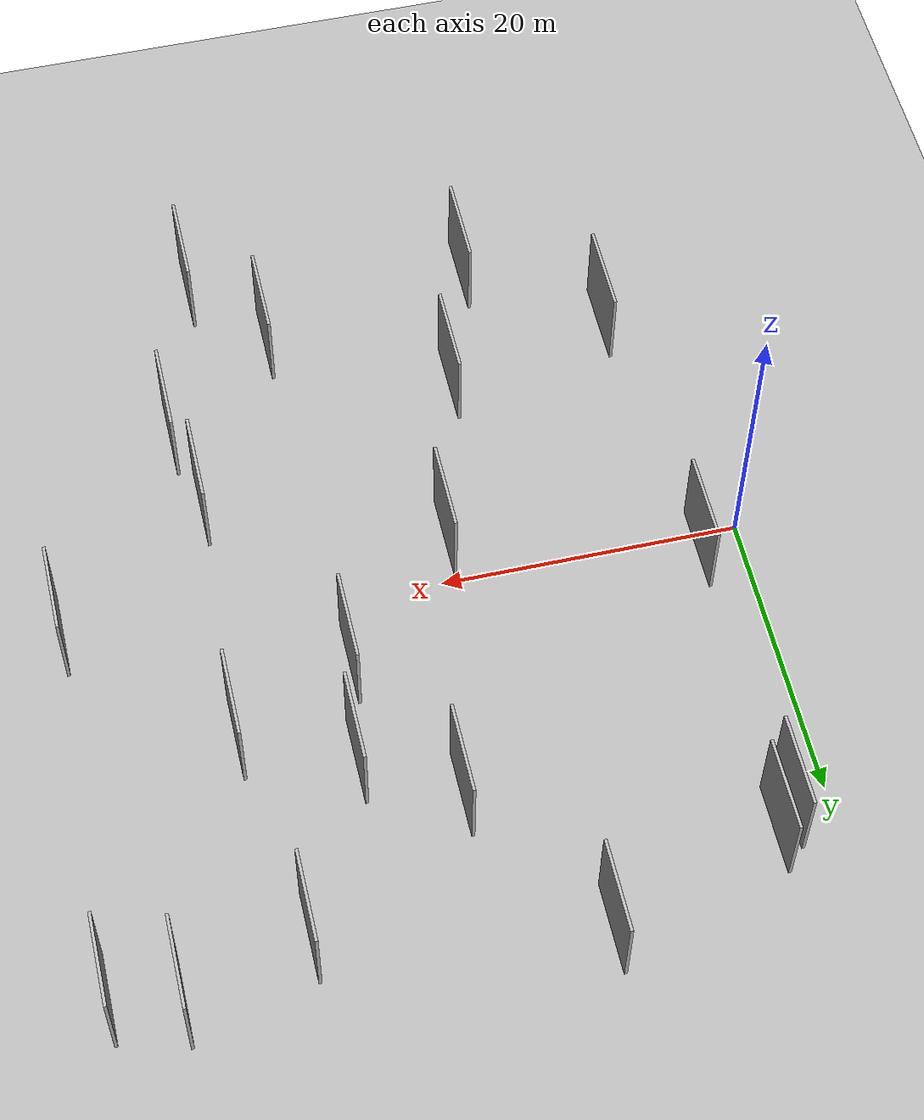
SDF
<?xml version="1.0" encoding="utf-8"?>

<sdf version="1.6">

   <world name="default">

      <gui fullscreen="0">

         <camera name="user_camera">

            <pose>-15 0 4.57585 0 0 0</pose>

            <view_controller>orbit</view_controller>

         </camera>

      </gui>

      <scene>

         <sky>

           <clouds>

             <speed>12</speed>

           </clouds>

         </sky>

         <ambient>0.4 0.4 0.4 1</ambient>

         <background>0.7 0.7 0.7 1</background>

         <shadows>1</shadows>

      </scene>

      <gravity>0 0 -9.8066</gravity>

      <magnetic_field>6e-06 2.3e-05 -4.2e-05</magnetic_field>

      <physics default="0" name="default_physics" type="ode">

         <ode>

            <solver>

               <type>quick</type>

               <iters>10</iters>

               <sor>1.0</sor>

               <use_dynamic_moi_rescaling>0</use_dynamic_moi_rescaling>

            </solver>

            <constraints>

               <cfm>0</cfm>

               <erp>0.2</erp>

               <contact_max_correcting_vel>100</contact_max_correcting_vel>

               <contact_surface_layer>0.001</contact_surface_layer>

            </constraints>

         </ode>

         <max_step_size>0.004</max_step_size>

         <real_time_factor>1</real_time_factor>

         <real_time_update_rate>250</real_time_update_rate>

      </physics>

      <light name="sun" type="directional">

         <cast_shadows>1</cast_shadows>

         <pose>0 0 10 0 0 0</pose>

         <diffuse>0.8 0.8 0.8 1</diffuse>

         <specular>0.2 0.2 0.2 1</specular>

         <attenuation>

            <range>1000</range>

            <constant>0.9</constant>

            <linear>0.01</linear>

            <quadratic>0.001</quadratic>

         </attenuation>

         <direction>-0.5 0.1 -0.9</direction>

      </light>

      <include>

         <name>ground_plane_1</name>

         <uri>model://HANNAS_ground_plane</uri>

         <pose>0 0 0  0 0 0</pose>

      </include>

      <include>

         <name>ground_plane_2</name>

         <uri>model://HANNAS_ground_plane</uri>

         <pose>100 0 0  0 0 0</pose>

      </include>

      <model name="HANNAS_wall_1">

         <static>1</static>

         <pose frame="">19.3405 -2.0208 2.5 0.000000 0.000000 1.570796</pose>

         <link name="link">

            <pose frame="">0 0 3.00 0 0 0</pose>

            <collision name="collision">

               <geometry>

                  <box>

                     <size>6.00 0.2 6.00</size>

                  </box>

               </geometry>

               <max_contacts>10</max_contacts>

               <surface>

                  <contact>

                     <ode/>

                  </contact>

                  <bounce/>

                  <friction>

                     <torsional>

                        <ode/>

                     </torsional>

                     <ode/>

                  </friction>

               </surface>

            </collision>

            <visual name="visual">

               <cast_shadows>0</cast_shadows>

               <geometry>

                  <box>

                     <size>6.00 0.2 6.00</size>

                  </box>

               </geometry>

               <material>

                  <script>

                     <uri>model://HANNAS_wall/materials/scripts</uri>

                     <uri>model://HANNAS_wall/materials/textures</uri>

                     <name>vrc/HANNAS_wall</name>

                  </script>

               </material>

            </visual>

            <self_collide>0</self_collide>

            <enable_wind>0</enable_wind>

            <kinematic>0</kinematic>

         </link>

      </model>

      <model name="HANNAS_wall_2">

         <static>1</static>

         <pose frame="">35.4959 -13.6867 2.5 0.000000 0.000000 1.570796</pose>

         <link name="link">

            <pose frame="">0 0 3.00 0 0 0</pose>

            <collision name="collision">

               <geometry>

                  <box>

                     <size>6.00 0.2 6.00</size>

                  </box>

               </geometry>

               <max_contacts>10</max_contacts>

               <surface>

                  <contact>

                     <ode/>

                  </contact>

                  <bounce/>

                  <friction>

                     <torsional>

                        <ode/>

                     </torsional>

                     <ode/>

                  </friction>

               </surface>

            </collision>

            <visual name="visual">

               <cast_shadows>0</cast_shadows>

               <geometry>

                  <box>

                     <size>6.00 0.2 6.00</size>

                  </box>

               </geometry>

               <material>

                  <script>

                     <uri>model://HANNAS_wall/materials/scripts</uri>

                     <uri>model://HANNAS_wall/materials/textures</uri>

                     <name>vrc/HANNAS_wall</name>

                  </script>

               </material>

            </visual>

            <self_collide>0</self_collide>

            <enable_wind>0</enable_wind>

            <kinematic>0</kinematic>

         </link>

      </model>

      <model name="HANNAS_wall_3">

         <static>1</static>

         <pose frame="">32.3080 -25.7244 2.5 0.000000 0.000000 1.570796</pose>

         <link name="link">

            <pose frame="">0 0 3.00 0 0 0</pose>

            <collision name="collision">

               <geometry>

                  <box>

                     <size>6.00 0.2 6.00</size>

                  </box>

               </geometry>

               <max_contacts>10</max_contacts>

               <surface>

                  <contact>

                     <ode/>

                  </contact>

                  <bounce/>

                  <friction>

                     <torsional>

                        <ode/>

                     </torsional>

                     <ode/>

                  </friction>

               </surface>

            </collision>

            <visual name="visual">

               <cast_shadows>0</cast_shadows>

               <geometry>

                  <box>

                     <size>6.00 0.2 6.00</size>

                  </box>

               </geometry>

               <material>

                  <script>

                     <uri>model://HANNAS_wall/materials/scripts</uri>

                     <uri>model://HANNAS_wall/materials/textures</uri>

                     <name>vrc/HANNAS_wall</name>

                  </script>

               </material>

            </visual>

            <self_collide>0</self_collide>

            <enable_wind>0</enable_wind>

            <kinematic>0</kinematic>

         </link>

      </model>

      <model name="HANNAS_wall_4">

         <static>1</static>

         <pose frame="">22.5257 16.6328 2.5 0.000000 0.000000 1.570796</pose>

         <link name="link">

            <pose frame="">0 0 3.00 0 0 0</pose>

            <collision name="collision">

               <geometry>

                  <box>

                     <size>6.00 0.2 6.00</size>

                  </box>

               </geometry>

               <max_contacts>10</max_contacts>

               <surface>

                  <contact>

                     <ode/>

                  </contact>

                  <bounce/>

                  <friction>

                     <torsional>

                        <ode/>

                     </torsional>

                     <ode/>

                  </friction>

               </surface>

            </collision>

            <visual name="visual">

               <cast_shadows>0</cast_shadows>

               <geometry>

                  <box>

                     <size>6.00 0.2 6.00</size>

                  </box>

               </geometry>

               <material>

                  <script>

                     <uri>model://HANNAS_wall/materials/scripts</uri>

                     <uri>model://HANNAS_wall/materials/textures</uri>

                     <name>vrc/HANNAS_wall</name>

                  </script>

               </material>

            </visual>

            <self_collide>0</self_collide>

            <enable_wind>0</enable_wind>

            <kinematic>0</kinematic>

         </link>

      </model>

      <model name="HANNAS_wall_5">

         <static>1</static>

         <pose frame="">27.3279 6.0161 2.5 0.000000 0.000000 1.570796</pose>

         <link name="link">

            <pose frame="">0 0 3.00 0 0 0</pose>

            <collision name="collision">

               <geometry>

                  <box>

                     <size>6.00 0.2 6.00</size>

                  </box>

               </geometry>

               <max_contacts>10</max_contacts>

               <surface>

                  <contact>

                     <ode/>

                  </contact>

                  <bounce/>

                  <friction>

                     <torsional>

                        <ode/>

                     </torsional>

                     <ode/>

                  </friction>

               </surface>

            </collision>

            <visual name="visual">

               <cast_shadows>0</cast_shadows>

               <geometry>

                  <box>

                     <size>6.00 0.2 6.00</size>

                  </box>

               </geometry>

               <material>

                  <script>

                     <uri>model://HANNAS_wall/materials/scripts</uri>

                     <uri>model://HANNAS_wall/materials/textures</uri>

                     <name>vrc/HANNAS_wall</name>

                  </script>

               </material>

            </visual>

            <self_collide>0</self_collide>

            <enable_wind>0</enable_wind>

            <kinematic>0</kinematic>

         </link>

      </model>

      <model name="HANNAS_wall_6">

         <static>1</static>

         <pose frame="">35.3297 9.7608 2.5 0.000000 0.000000 1.570796</pose>

         <link name="link">

            <pose frame="">0 0 3.00 0 0 0</pose>

            <collision name="collision">

               <geometry>

                  <box>

                     <size>6.00 0.2 6.00</size>

                  </box>

               </geometry>

               <max_contacts>10</max_contacts>

               <surface>

                  <contact>

                     <ode/>

                  </contact>

                  <bounce/>

                  <friction>

                     <torsional>

                        <ode/>

                     </torsional>

                     <ode/>

                  </friction>

               </surface>

            </collision>

            <visual name="visual">

               <cast_shadows>0</cast_shadows>

               <geometry>

                  <box>

                     <size>6.00 0.2 6.00</size>

                  </box>

               </geometry>

               <material>

                  <script>

                     <uri>model://HANNAS_wall/materials/scripts</uri>

                     <uri>model://HANNAS_wall/materials/textures</uri>

                     <name>vrc/HANNAS_wall</name>

                  </script>

               </material>

            </visual>

            <self_collide>0</self_collide>

            <enable_wind>0</enable_wind>

            <kinematic>0</kinematic>

         </link>

      </model>

      <model name="HANNAS_wall_7">

         <static>1</static>

         <pose frame="">34.4608 -7.7306 2.5 0.000000 0.000000 1.570796</pose>

         <link name="link">

            <pose frame="">0 0 3.00 0 0 0</pose>

            <collision name="collision">

               <geometry>

                  <box>

                     <size>6.00 0.2 6.00</size>

                  </box>

               </geometry>

               <max_contacts>10</max_contacts>

               <surface>

                  <contact>

                     <ode/>

                  </contact>

                  <bounce/>

                  <friction>

                     <torsional>

                        <ode/>

                     </torsional>

                     <ode/>

                  </friction>

               </surface>

            </collision>

            <visual name="visual">

               <cast_shadows>0</cast_shadows>

               <geometry>

                  <box>

                     <size>6.00 0.2 6.00</size>

                  </box>

               </geometry>

               <material>

                  <script>

                     <uri>model://HANNAS_wall/materials/scripts</uri>

                     <uri>model://HANNAS_wall/materials/textures</uri>

                     <name>vrc/HANNAS_wall</name>

                  </script>

               </material>

            </visual>

            <self_collide>0</self_collide>

            <enable_wind>0</enable_wind>

            <kinematic>0</kinematic>

         </link>

      </model>

      <model name="HANNAS_wall_8">

         <static>1</static>

         <pose frame="">41.4975 26.4178 2.5 0.000000 0.000000 1.570796</pose>

         <link name="link">

            <pose frame="">0 0 3.00 0 0 0</pose>

            <collision name="collision">

               <geometry>

                  <box>

                     <size>6.00 0.2 6.00</size>

                  </box>

               </geometry>

               <max_contacts>10</max_contacts>

               <surface>

                  <contact>

                     <ode/>

                  </contact>

                  <bounce/>

                  <friction>

                     <torsional>

                        <ode/>

                     </torsional>

                     <ode/>

                  </friction>

               </surface>

            </collision>

            <visual name="visual">

               <cast_shadows>0</cast_shadows>

               <geometry>

                  <box>

                     <size>6.00 0.2 6.00</size>

                  </box>

               </geometry>

               <material>

                  <script>

                     <uri>model://HANNAS_wall/materials/scripts</uri>

                     <uri>model://HANNAS_wall/materials/textures</uri>

                     <name>vrc/HANNAS_wall</name>

                  </script>

               </material>

            </visual>

            <self_collide>0</self_collide>

            <enable_wind>0</enable_wind>

            <kinematic>0</kinematic>

         </link>

      </model>

      <model name="HANNAS_wall_9">

         <static>1</static>

         <pose frame="">3.4852 2.5388 2.5 0.000000 0.000000 1.570796</pose>

         <link name="link">

            <pose frame="">0 0 3.00 0 0 0</pose>

            <collision name="collision">

               <geometry>

                  <box>

                     <size>6.00 0.2 6.00</size>

                  </box>

               </geometry>

               <max_contacts>10</max_contacts>

               <surface>

                  <contact>

                     <ode/>

                  </contact>

                  <bounce/>

                  <friction>

                     <torsional>

                        <ode/>

                     </torsional>

                     <ode/>

                  </friction>

               </surface>

            </collision>

            <visual name="visual">

               <cast_shadows>0</cast_shadows>

               <geometry>

                  <box>

                     <size>6.00 0.2 6.00</size>

                  </box>

               </geometry>

               <material>

                  <script>

                     <uri>model://HANNAS_wall/materials/scripts</uri>

                     <uri>model://HANNAS_wall/materials/textures</uri>

                     <name>vrc/HANNAS_wall</name>

                  </script>

               </material>

            </visual>

            <self_collide>0</self_collide>

            <enable_wind>0</enable_wind>

            <kinematic>0</kinematic>

         </link>

      </model>

      <model name="HANNAS_wall_10">

         <static>1</static>

         <pose frame="">33.4839 24.0221 2.5 0.000000 0.000000 1.570796</pose>

         <link name="link">

            <pose frame="">0 0 3.00 0 0 0</pose>

            <collision name="collision">

               <geometry>

                  <box>

                     <size>6.00 0.2 6.00</size>

                  </box>

               </geometry>

               <max_contacts>10</max_contacts>

               <surface>

                  <contact>

                     <ode/>

                  </contact>

                  <bounce/>

                  <friction>

                     <torsional>

                        <ode/>

                     </torsional>

                     <ode/>

                  </friction>

               </surface>

            </collision>

            <visual name="visual">

               <cast_shadows>0</cast_shadows>

               <geometry>

                  <box>

                     <size>6.00 0.2 6.00</size>

                  </box>

               </geometry>

               <material>

                  <script>

                     <uri>model://HANNAS_wall/materials/scripts</uri>

                     <uri>model://HANNAS_wall/materials/textures</uri>

                     <name>vrc/HANNAS_wall</name>

                  </script>

               </material>

            </visual>

            <self_collide>0</self_collide>

            <enable_wind>0</enable_wind>

            <kinematic>0</kinematic>

         </link>

      </model>

      <model name="HANNAS_wall_11">

         <static>1</static>

         <pose frame="">4.4653 23.2430 2.5 0.000000 0.000000 1.570796</pose>

         <link name="link">

            <pose frame="">0 0 3.00 0 0 0</pose>

            <collision name="collision">

               <geometry>

                  <box>

                     <size>6.00 0.2 6.00</size>

                  </box>

               </geometry>

               <max_contacts>10</max_contacts>

               <surface>

                  <contact>

                     <ode/>

                  </contact>

                  <bounce/>

                  <friction>

                     <torsional>

                        <ode/>

                     </torsional>

                     <ode/>

                  </friction>

               </surface>

            </collision>

            <visual name="visual">

               <cast_shadows>0</cast_shadows>

               <geometry>

                  <box>

                     <size>6.00 0.2 6.00</size>

                  </box>

               </geometry>

               <material>

                  <script>

                     <uri>model://HANNAS_wall/materials/scripts</uri>

                     <uri>model://HANNAS_wall/materials/textures</uri>

                     <name>vrc/HANNAS_wall</name>

                  </script>

               </material>

            </visual>

            <self_collide>0</self_collide>

            <enable_wind>0</enable_wind>

            <kinematic>0</kinematic>

         </link>

      </model>

      <model name="HANNAS_wall_12">

         <static>1</static>

         <pose frame="">27.8571 -20.1355 2.5 0.000000 0.000000 1.570796</pose>

         <link name="link">

            <pose frame="">0 0 3.00 0 0 0</pose>

            <collision name="collision">

               <geometry>

                  <box>

                     <size>6.00 0.2 6.00</size>

                  </box>

               </geometry>

               <max_contacts>10</max_contacts>

               <surface>

                  <contact>

                     <ode/>

                  </contact>

                  <bounce/>

                  <friction>

                     <torsional>

                        <ode/>

                     </torsional>

                     <ode/>

                  </friction>

               </surface>

            </collision>

            <visual name="visual">

               <cast_shadows>0</cast_shadows>

               <geometry>

                  <box>

                     <size>6.00 0.2 6.00</size>

                  </box>

               </geometry>

               <material>

                  <script>

                     <uri>model://HANNAS_wall/materials/scripts</uri>

                     <uri>model://HANNAS_wall/materials/textures</uri>

                     <name>vrc/HANNAS_wall</name>

                  </script>

               </material>

            </visual>

            <self_collide>0</self_collide>

            <enable_wind>0</enable_wind>

            <kinematic>0</kinematic>

         </link>

      </model>

      <model name="HANNAS_wall_13">

         <static>1</static>

         <pose frame="">16.2853 -14.1165 2.5 0.000000 0.000000 1.570796</pose>

         <link name="link">

            <pose frame="">0 0 3.00 0 0 0</pose>

            <collision name="collision">

               <geometry>

                  <box>

                     <size>6.00 0.2 6.00</size>

                  </box>

               </geometry>

               <max_contacts>10</max_contacts>

               <surface>

                  <contact>

                     <ode/>

                  </contact>

                  <bounce/>

                  <friction>

                     <torsional>

                        <ode/>

                     </torsional>

                     <ode/>

                  </friction>

               </surface>

            </collision>

            <visual name="visual">

               <cast_shadows>0</cast_shadows>

               <geometry>

                  <box>

                     <size>6.00 0.2 6.00</size>

                  </box>

               </geometry>

               <material>

                  <script>

                     <uri>model://HANNAS_wall/materials/scripts</uri>

                     <uri>model://HANNAS_wall/materials/textures</uri>

                     <name>vrc/HANNAS_wall</name>

                  </script>

               </material>

            </visual>

            <self_collide>0</self_collide>

            <enable_wind>0</enable_wind>

            <kinematic>0</kinematic>

         </link>

      </model>

      <model name="HANNAS_wall_14">

         <static>1</static>

         <pose frame="">5.0337 -16.8776 2.5 0.000000 0.000000 1.570796</pose>

         <link name="link">

            <pose frame="">0 0 3.00 0 0 0</pose>

            <collision name="collision">

               <geometry>

                  <box>

                     <size>6.00 0.2 6.00</size>

                  </box>

               </geometry>

               <max_contacts>10</max_contacts>

               <surface>

                  <contact>

                     <ode/>

                  </contact>

                  <bounce/>

                  <friction>

                     <torsional>

                        <ode/>

                     </torsional>

                     <ode/>

                  </friction>

               </surface>

            </collision>

            <visual name="visual">

               <cast_shadows>0</cast_shadows>

               <geometry>

                  <box>

                     <size>6.00 0.2 6.00</size>

                  </box>

               </geometry>

               <material>

                  <script>

                     <uri>model://HANNAS_wall/materials/scripts</uri>

                     <uri>model://HANNAS_wall/materials/textures</uri>

                     <name>vrc/HANNAS_wall</name>

                  </script>

               </material>

            </visual>

            <self_collide>0</self_collide>

            <enable_wind>0</enable_wind>

            <kinematic>0</kinematic>

         </link>

      </model>

      <model name="HANNAS_wall_15">

         <static>1</static>

         <pose frame="">15.8202 27.4158 2.5 0.000000 0.000000 1.570796</pose>

         <link name="link">

            <pose frame="">0 0 3.00 0 0 0</pose>

            <collision name="collision">

               <geometry>

                  <box>

                     <size>6.00 0.2 6.00</size>

                  </box>

               </geometry>

               <max_contacts>10</max_contacts>

               <surface>

                  <contact>

                     <ode/>

                  </contact>

                  <bounce/>

                  <friction>

                     <torsional>

                        <ode/>

                     </torsional>

                     <ode/>

                  </friction>

               </surface>

            </collision>

            <visual name="visual">

               <cast_shadows>0</cast_shadows>

               <geometry>

                  <box>

                     <size>6.00 0.2 6.00</size>

                  </box>

               </geometry>

               <material>

                  <script>

                     <uri>model://HANNAS_wall/materials/scripts</uri>

                     <uri>model://HANNAS_wall/materials/textures</uri>

                     <name>vrc/HANNAS_wall</name>

                  </script>

               </material>

            </visual>

            <self_collide>0</self_collide>

            <enable_wind>0</enable_wind>

            <kinematic>0</kinematic>

         </link>

      </model>

      <model name="HANNAS_wall_16">

         <static>1</static>

         <pose frame="">44.8562 0.0104 2.5 0.000000 0.000000 1.570796</pose>

         <link name="link">

            <pose frame="">0 0 3.00 0 0 0</pose>

            <collision name="collision">

               <geometry>

                  <box>

                     <size>6.00 0.2 6.00</size>

                  </box>

               </geometry>

               <max_contacts>10</max_contacts>

               <surface>

                  <contact>

                     <ode/>

                  </contact>

                  <bounce/>

                  <friction>

                     <torsional>

                        <ode/>

                     </torsional>

                     <ode/>

                  </friction>

               </surface>

            </collision>

            <visual name="visual">

               <cast_shadows>0</cast_shadows>

               <geometry>

                  <box>

                     <size>6.00 0.2 6.00</size>

                  </box>

               </geometry>

               <material>

                  <script>

                     <uri>model://HANNAS_wall/materials/scripts</uri>

                     <uri>model://HANNAS_wall/materials/textures</uri>

                     <name>vrc/HANNAS_wall</name>

                  </script>

               </material>

            </visual>

            <self_collide>0</self_collide>

            <enable_wind>0</enable_wind>

            <kinematic>0</kinematic>

         </link>

      </model>

      <model name="HANNAS_wall_17">

         <static>1</static>

         <pose frame="">28.3500 13.0089 2.5 0.000000 0.000000 1.570796</pose>

         <link name="link">

            <pose frame="">0 0 3.00 0 0 0</pose>

            <collision name="collision">

               <geometry>

                  <box>

                     <size>6.00 0.2 6.00</size>

                  </box>

               </geometry>

               <max_contacts>10</max_contacts>

               <surface>

                  <contact>

                     <ode/>

                  </contact>

                  <bounce/>

                  <friction>

                     <torsional>

                        <ode/>

                     </torsional>

                     <ode/>

                  </friction>

               </surface>

            </collision>

            <visual name="visual">

               <cast_shadows>0</cast_shadows>

               <geometry>

                  <box>

                     <size>6.00 0.2 6.00</size>

                  </box>

               </geometry>

               <material>

                  <script>

                     <uri>model://HANNAS_wall/materials/scripts</uri>

                     <uri>model://HANNAS_wall/materials/textures</uri>

                     <name>vrc/HANNAS_wall</name>

                  </script>

               </material>

            </visual>

            <self_collide>0</self_collide>

            <enable_wind>0</enable_wind>

            <kinematic>0</kinematic>

         </link>

      </model>

      <model name="HANNAS_wall_18">

         <static>1</static>

         <pose frame="">45.8067 25.3126 2.5 0.000000 0.000000 1.570796</pose>

         <link name="link">

            <pose frame="">0 0 3.00 0 0 0</pose>

            <collision name="collision">

               <geometry>

                  <box>

                     <size>6.00 0.2 6.00</size>

                  </box>

               </geometry>

               <max_contacts>10</max_contacts>

               <surface>

                  <contact>

                     <ode/>

                  </contact>

                  <bounce/>

                  <friction>

                     <torsional>

                        <ode/>

                     </torsional>

                     <ode/>

                  </friction>

               </surface>

            </collision>

            <visual name="visual">

               <cast_shadows>0</cast_shadows>

               <geometry>

                  <box>

                     <size>6.00 0.2 6.00</size>

                  </box>

               </geometry>

               <material>

                  <script>

                     <uri>model://HANNAS_wall/materials/scripts</uri>

                     <uri>model://HANNAS_wall/materials/textures</uri>

                     <name>vrc/HANNAS_wall</name>

                  </script>

               </material>

            </visual>

            <self_collide>0</self_collide>

            <enable_wind>0</enable_wind>

            <kinematic>0</kinematic>

         </link>

      </model>

      <model name="HANNAS_wall_19">

         <static>1</static>

         <pose frame="">3.1984 21.8559 2.5 0.000000 0.000000 1.570796</pose>

         <link name="link">

            <pose frame="">0 0 3.00 0 0 0</pose>

            <collision name="collision">

               <geometry>

                  <box>

                     <size>6.00 0.2 6.00</size>

                  </box>

               </geometry>

               <max_contacts>10</max_contacts>

               <surface>

                  <contact>

                     <ode/>

                  </contact>

                  <bounce/>

                  <friction>

                     <torsional>

                        <ode/>

                     </torsional>

                     <ode/>

                  </friction>

               </surface>

            </collision>

            <visual name="visual">

               <cast_shadows>0</cast_shadows>

               <geometry>

                  <box>

                     <size>6.00 0.2 6.00</size>

                  </box>

               </geometry>

               <material>

                  <script>

                     <uri>model://HANNAS_wall/materials/scripts</uri>

                     <uri>model://HANNAS_wall/materials/textures</uri>

                     <name>vrc/HANNAS_wall</name>

                  </script>

               </material>

            </visual>

            <self_collide>0</self_collide>

            <enable_wind>0</enable_wind>

            <kinematic>0</kinematic>

         </link>

      </model>

      <model name="HANNAS_wall_20">

         <static>1</static>

         <pose frame="">13.4871 -23.1347 2.5 0.000000 0.000000 1.570796</pose>

         <link name="link">

            <pose frame="">0 0 3.00 0 0 0</pose>

            <collision name="collision">

               <geometry>

                  <box>

                     <size>6.00 0.2 6.00</size>

                  </box>

               </geometry>

               <max_contacts>10</max_contacts>

               <surface>

                  <contact>

                     <ode/>

                  </contact>

                  <bounce/>

                  <friction>

                     <torsional>

                        <ode/>

                     </torsional>

                     <ode/>

                  </friction>

               </surface>

            </collision>

            <visual name="visual">

               <cast_shadows>0</cast_shadows>

               <geometry>

                  <box>

                     <size>6.00 0.2 6.00</size>

                  </box>

               </geometry>

               <material>

                  <script>

                     <uri>model://HANNAS_wall/materials/scripts</uri>

                     <uri>model://HANNAS_wall/materials/textures</uri>

                     <name>vrc/HANNAS_wall</name>

                  </script>

               </material>

            </visual>

            <self_collide>0</self_collide>

            <enable_wind>0</enable_wind>

            <kinematic>0</kinematic>

         </link>

      </model>

   </world>

</sdf>

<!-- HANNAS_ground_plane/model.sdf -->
<sdf version="1.4">
<model name="HANNAS_ground_plane">
  <static>true</static>
    <link name="link">
      <collision name="collision">
        <geometry>
          <plane>
            <normal>0 0 1</normal>
            <size>1000 1000</size>
          </plane>
        </geometry>
        <surface>
          <friction>
            <ode>
              <mu>100</mu>
              <mu2>50</mu2>
            </ode>
          </friction>
        </surface>
      </collision>
      <visual name="visual">
        <cast_shadows>false</cast_shadows>
        <geometry>
          <plane>
            <normal>0 0 1</normal>
            <size>1000 1000</size>
          </plane>
        </geometry>
        <material>
          <script>
            <uri>model://HANNAS_ground_plane/materials/scripts/HANNAS_ground_plane.material</uri>
	    <uri>model://HANNAS_ground_plane/materials/textures</uri>
            <name>HANNASGroundPlane/Image</name>
          </script>
        </material>
      </visual>
    </link>
  </model>
</sdf>
